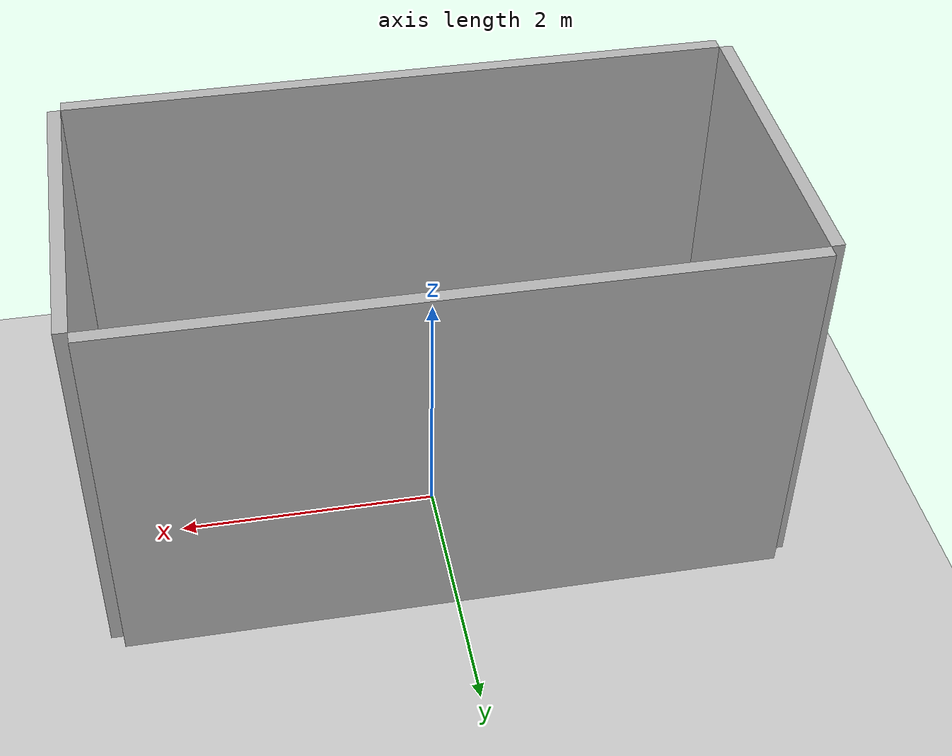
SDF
<sdf version='1.10'>
  <world name='empty'>
    <physics name='1ms' type='ignored'>
      <max_step_size>0.001</max_step_size>
      <real_time_factor>1</real_time_factor>
      <real_time_update_rate>1000</real_time_update_rate>
    </physics>
    <plugin name='gz::sim::systems::Physics' filename='gz-sim-physics-system'/>
    <plugin name='gz::sim::systems::UserCommands' filename='gz-sim-user-commands-system'/>
    <plugin name='gz::sim::systems::SceneBroadcaster' filename='gz-sim-scene-broadcaster-system'/>
    <plugin name='gz::sim::systems::Contact' filename='gz-sim-contact-system'/>
    <gravity>0 0 -9.8000000000000007</gravity>
    <magnetic_field>5.5644999999999998e-06 2.2875799999999999e-05 -4.2388400000000002e-05</magnetic_field>
    <atmosphere type='adiabatic'/>
    <scene>
      <ambient>0.400000006 0.400000006 0.400000006 1</ambient>
      <background>0.699999988 0.699999988 0.699999988 1</background>
      <shadows>true</shadows>
    </scene>
    <model name='ground_plane'>
      <static>true</static>
      <link name='link'>
        <collision name='collision'>
          <geometry>
            <plane>
              <normal>0 0 1</normal>
              <size>100 100</size>
            </plane>
          </geometry>
          <surface>
            <friction>
              <ode/>
            </friction>
            <bounce/>
            <contact/>
          </surface>
        </collision>
        <visual name='visual'>
          <geometry>
            <plane>
              <normal>0 0 1</normal>
              <size>100 100</size>
            </plane>
          </geometry>
          <material>
            <ambient>0.800000012 0.800000012 0.800000012 1</ambient>
            <diffuse>0.800000012 0.800000012 0.800000012 1</diffuse>
            <specular>0.800000012 0.800000012 0.800000012 1</specular>
          </material>
        </visual>
        <pose>0 0 0 0 0 0</pose>
        <inertial>
          <pose>0 0 0 0 0 0</pose>
          <mass>1</mass>
          <inertia>
            <ixx>1</ixx>
            <ixy>0</ixy>
            <ixz>0</ixz>
            <iyy>1</iyy>
            <iyz>0</iyz>
            <izz>1</izz>
          </inertia>
        </inertial>
        <enable_wind>false</enable_wind>
      </link>
      <pose>0 0 0 0 0 0</pose>
      <self_collide>false</self_collide>
    </model>

    <!-- Open Box Model -->
    <model name="open_box">
      <static>true</static>
      <pose>0 -0.25 0 0 0 0</pose>

      <!-- Parameters -->
      <!-- Wall thickness = 0.1 -->

      <!-- Bottom -->
      <link name="bottom">
        <collision name="bottom_collision">
          <geometry>
            <box>
              <size>5.0 2.5 0.1</size>
            </box>
          </geometry>
        </collision>
        <visual name="bottom_visual">
          <geometry>
            <box>
              <size>5.0 2.5 0.1</size>
            </box>
          </geometry>
          <material>
            <ambient>0.7 0.7 0.7 1</ambient>
            <diffuse>0.7 0.7 0.7 1</diffuse>
          </material>
        </visual>
        <pose>0 0 0.05 0 0 0</pose>
      </link>

      <!-- Left Wall -->
      <link name="left_wall">
        <collision name="left_collision">
          <geometry>
            <box>
              <size>5.0 0.1 3.0</size>
            </box>
          </geometry>
        </collision>
        <visual name="left_visual">
          <geometry>
            <box>
              <size>5.0 0.1 3.0</size>
            </box>
          </geometry>
        </visual>
        <pose>0 1.3 1.5 0 0 0</pose>
      </link>

      <!-- Right Wall -->
      <link name="right_wall">
        <collision name="right_collision">
          <geometry>
            <box>
              <size>5.0 0.1 3.0</size>
            </box>
          </geometry>
        </collision>
        <visual name="right_visual">
          <geometry>
            <box>
              <size>5.0 0.1 3.0</size>
            </box>
          </geometry>
        </visual>
        <pose>0 -1.3 1.5 0 0 0</pose>
      </link>

      <!-- Front Wall -->
      <link name="front_wall">
        <collision name="front_collision">
          <geometry>
            <box>
              <size>0.1 2.5 3.0</size>
            </box>
          </geometry>
        </collision>
        <visual name="front_visual">
          <geometry>
            <box>
              <size>0.1 2.5 3.0</size>
            </box>
          </geometry>
        </visual>
        <pose>2.55 0 1.5 0 0 0</pose>
      </link>

      <!-- Back Wall -->
      <link name="back_wall">
        <collision name="back_collision">
          <geometry>
            <box>
              <size>0.1 2.5 3.0</size>
            </box>
          </geometry>
        </collision>
        <visual name="back_visual">
          <geometry>
            <box>
              <size>0.1 2.5 3.0</size>
            </box>
          </geometry>
        </visual>
        <pose>-2.55 0 1.5 0 0 0</pose>
      </link>

    </model>

    <light name='sun' type='directional'>
      <pose>0 0 10 0 0 0</pose>
      <cast_shadows>true</cast_shadows>
      <intensity>1</intensity>
      <direction>-0.5 0.10000000000000001 -0.90000000000000002</direction>
      <diffuse>0.800000012 0.800000012 0.800000012 1</diffuse>
      <specular>0.200000003 0.200000003 0.200000003 1</specular>
      <attenuation>
        <range>1000</range>
        <linear>0.01</linear>
        <constant>0.90000000000000002</constant>
        <quadratic>0.001</quadratic>
      </attenuation>
      <spot>
        <inner_angle>0</inner_angle>
        <outer_angle>0</outer_angle>
        <falloff>0</falloff>
      </spot>
    </light>
  </world>
</sdf>
